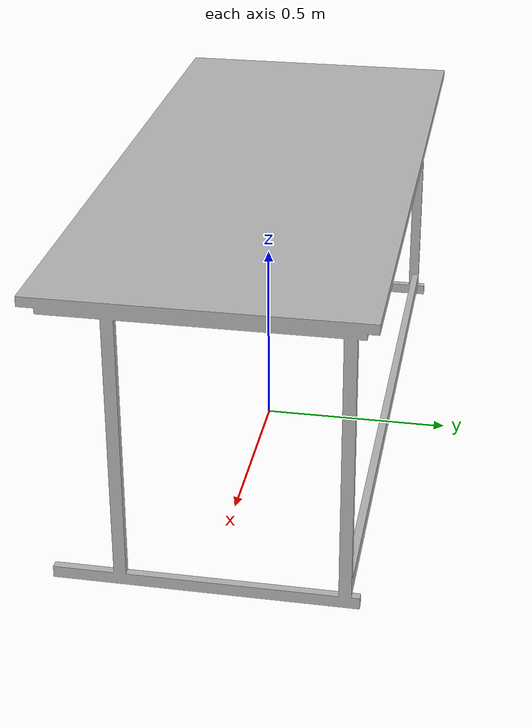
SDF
<?xml version="1.0"?>
<sdf version="1.5">
<model name="stul_180">
	<pose>0 0 0 0 0 0</pose>
	<static>true</static>
	<link name="stul_180_collision">
		<collision name="stul_180_collision">
		<geometry>
			<mesh>
				<uri>model://stul_180/meshes/model.dae</uri>

			</mesh>
		</geometry>
		</collision>
	<visual name="stul_180_mesh">
	<cast_shadows>false</cast_shadows>
		<geometry>
			<mesh>
				<uri> model://stul_180/meshes/model.dae</uri>

			</mesh>
		</geometry>
		<material>
		<script>
			<uri> model://stul_180/material/scripts</uri>
			<uri> model://stul_180/material/textures</uri>
			<name>stul_180/Diffuse</name>
		</script>
		</material>

	</visual>
</link>
</model>
</sdf>
